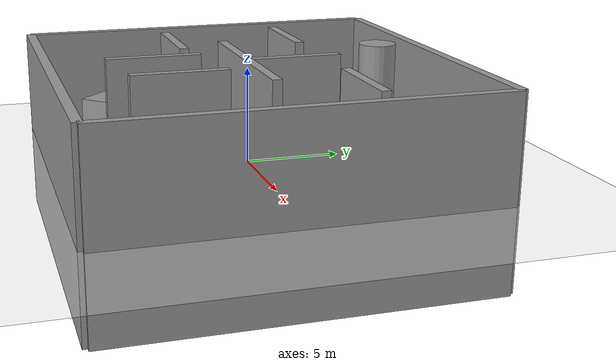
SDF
<sdf version="1.6">
 <world name="maze_world">
  <include><uri>https://fuel.gazebosim.org/1.0/OpenRobotics/models/Sun</uri></include>
  <plugin filename="ignition-gazebo-physics-system" name="ignition::gazebo::systems::Physics"/>
  <plugin filename="ignition-gazebo-user-commands-system" name="ignition::gazebo::systems::UserCommands"/>
  <plugin filename="ignition-gazebo-scene-broadcaster-system" name="ignition::gazebo::systems::SceneBroadcaster"/>
  <plugin filename="ignition-gazebo-contact-system" name="ignition::gazebo::systems::Contact"/>
  <plugin filename="ignition-gazebo-sensors-system" name="ignition::gazebo::systems::Sensors">
   <render_engine>ogre2</render_engine>
  </plugin>
  <physics type="ode">
   <max_step_size>0.001</max_step_size>
   <real_time_factor>1</real_time_factor>
   <real_time_update_rate>1000</real_time_update_rate>
  </physics>
  <gravity>0 0 -9.8</gravity>
  <model name="ground_plane">
   <static>1</static>
   <link name="link">
    <collision name="collision">
     <geometry><plane><normal>0 0 1</normal><size>50 50</size></plane></geometry>
     <surface><friction><ode><mu>1.0</mu><mu2>1.0</mu2></ode></friction></surface>
    </collision>
    <visual name="visual">
     <cast_shadows>0</cast_shadows>
     <geometry><plane><normal>0 0 1</normal><size>50 50</size></plane></geometry>
     <material>
      <script><uri>file://media/materials/scripts/gazebo.material</uri><name>Gazebo/White</name></script>
     </material>
    </visual>
   </link>
  </model>
  <model name="maze">
   <static>1</static>
   <link name="outer_south">
    <pose>0 -10 0 0 0 0</pose>
    <collision name="col"><geometry><box><size>20 0.5 10</size></box></geometry></collision>
    <visual name="vis">
     <geometry><box><size>20 0.5 10</size></box></geometry>
     <pose>0 0 0.5 0 0 0</pose>
     <material>
      <script><uri>file://media/materials/scripts/gazebo.material</uri><name>Gazebo/Grey</name></script>
     </material>
    </visual>
   </link>
   <link name="outer_north">
    <pose>0 10 0 0 0 0</pose>
    <collision name="col"><geometry><box><size>20 0.5 10</size></box></geometry></collision>
    <visual name="vis">
     <geometry><box><size>20 0.5 10</size></box></geometry>
     <pose>0 0 0.5 0 0 0</pose>
     <material>
      <script><uri>file://media/materials/scripts/gazebo.material</uri><name>Gazebo/Grey</name></script>
     </material>
    </visual>
   </link>
   <link name="outer_west">
    <pose>-10 0 0 0 0 1.5708</pose>
    <collision name="col"><geometry><box><size>20 0.5 10</size></box></geometry></collision>
    <visual name="vis">
     <geometry><box><size>20 0.5 10</size></box></geometry>
     <pose>0 0 0.5 0 0 0</pose>
     <material>
      <script><uri>file://media/materials/scripts/gazebo.material</uri><name>Gazebo/Grey</name></script>
     </material>
    </visual>
   </link>
   <link name="outer_east">
    <pose>10 0 0 0 0 1.5708</pose>
    <collision name="col"><geometry><box><size>20 0.5 10</size></box></geometry></collision>
    <visual name="vis">
     <geometry><box><size>20 0.5 10</size></box></geometry>
     <pose>0 0 0.5 0 0 0</pose>
     <material>
      <script><uri>file://media/materials/scripts/gazebo.material</uri><name>Gazebo/Grey</name></script>
     </material>
    </visual>
   </link>
   <link name="inner_wall_1">
    <collision name="col"><geometry><box><size>10 0.5 10</size></box></geometry></collision>
    <visual name="vis">
     <geometry><box><size>10 0.5 10</size></box></geometry>
     <pose>0 0 0.5 0 0 0</pose>
     <material>
      <script><uri>file://media/materials/scripts/gazebo.material</uri><name>Gazebo/Grey</name></script>
     </material>
    </visual>
   </link>
   <link name="inner_wall_2">
    <pose>0 2.5 0 0 0 1.5708</pose>
    <collision name="col"><geometry><box><size>5 0.5 10</size></box></geometry></collision>
    <visual name="vis">
     <geometry><box><size>5 0.5 10</size></box></geometry>
     <pose>0 0 0.5 0 0 0</pose>
     <material>
      <script><uri>file://media/materials/scripts/gazebo.material</uri><name>Gazebo/Grey</name></script>
     </material>
    </visual>
   </link>
   <link name="inner_wall_3">
    <pose>-2 -4.5 0 0 0 1.5708</pose>
    <collision name="col"><geometry><box><size>5 0.5 10</size></box></geometry></collision>
    <visual name="vis">
     <geometry><box><size>5 0.5 10</size></box></geometry>
     <pose>0 0 0.5 0 0 0</pose>
     <material>
      <script><uri>file://media/materials/scripts/gazebo.material</uri><name>Gazebo/Grey</name></script>
     </material>
    </visual>
   </link>
   <link name="inner_wall_4">
    <pose>-6 -2.5 0 0 0 0</pose>
    <collision name="col"><geometry><box><size>5 0.5 10</size></box></geometry></collision>
    <visual name="vis">
     <geometry><box><size>5 0.5 10</size></box></geometry>
     <pose>0 0 0.5 0 0 0</pose>
     <material>
      <script><uri>file://media/materials/scripts/gazebo.material</uri><name>Gazebo/Grey</name></script>
     </material>
    </visual>
   </link>
   <link name="inner_wall_5">
    <pose>2 -4 0 0 0 1.5708</pose>
    <collision name="col"><geometry><box><size>5 0.5 10</size></box></geometry></collision>
    <visual name="vis">
     <geometry><box><size>5 0.5 10</size></box></geometry>
     <pose>0 0 0.5 0 0 0</pose>
     <material>
      <script><uri>file://media/materials/scripts/gazebo.material</uri><name>Gazebo/Grey</name></script>
     </material>
    </visual>
   </link>
   <link name="inner_wall_6">
    <pose>6 4 0 0 0 0</pose>
    <collision name="col"><geometry><box><size>5 0.5 10</size></box></geometry></collision>
    <visual name="vis">
     <geometry><box><size>5 0.5 10</size></box></geometry>
     <pose>0 0 0.5 0 0 0</pose>
     <material>
      <script><uri>file://media/materials/scripts/gazebo.material</uri><name>Gazebo/Grey</name></script>
     </material>
    </visual>
   </link>
   <link name="inner_wall_7">
    <pose>-6 4 0 0 0 0</pose>
    <collision name="col"><geometry><box><size>5 0.5 10</size></box></geometry></collision>
    <visual name="vis">
     <geometry><box><size>5 0.5 10</size></box></geometry>
     <pose>0 0 0.5 0 0 0</pose>
     <material>
      <script><uri>file://media/materials/scripts/gazebo.material</uri><name>Gazebo/Grey</name></script>
     </material>
    </visual>
   </link>
   <link name="cylinder_1">
    <pose>-2 8 0 0 0 0</pose>
    <collision name="col">
     <geometry><cylinder><radius>1</radius><length>10</length></cylinder></geometry>
    </collision>
    <visual name="vis">
     <geometry><cylinder><radius>1</radius><length>10</length></cylinder></geometry>
     <pose>0 0 0.5 0 0 0</pose>
     <material>
      <script><uri>file://media/materials/scripts/gazebo.material</uri><name>Gazebo/Grey</name></script>
     </material>
    </visual>
   </link>
   <link name="box_1">
    <pose>-6 -6 1.25 0 0 0.7854</pose>
    <collision name="col"><geometry><box><size>2.5 2.5 2.5</size></box></geometry></collision>
    <visual name="vis">
     <geometry><box><size>2.5 2.5 2.5</size></box></geometry>
     <material>
      <script><uri>file://media/materials/scripts/gazebo.material</uri><name>Gazebo/Grey</name></script>
     </material>
    </visual>
   </link>
   <link name="box_2">
    <pose>0.5 -5 2.5 0 0 0.7854</pose>
    <collision name="col"><geometry><box><size>1 1 5</size></box></geometry></collision>
    <visual name="vis">
     <geometry><box><size>1 1 5</size></box></geometry>
     <material>
      <script><uri>file://media/materials/scripts/gazebo.material</uri><name>Gazebo/Grey</name></script>
     </material>
    </visual>
   </link>
  </model>
 </world>
</sdf>
